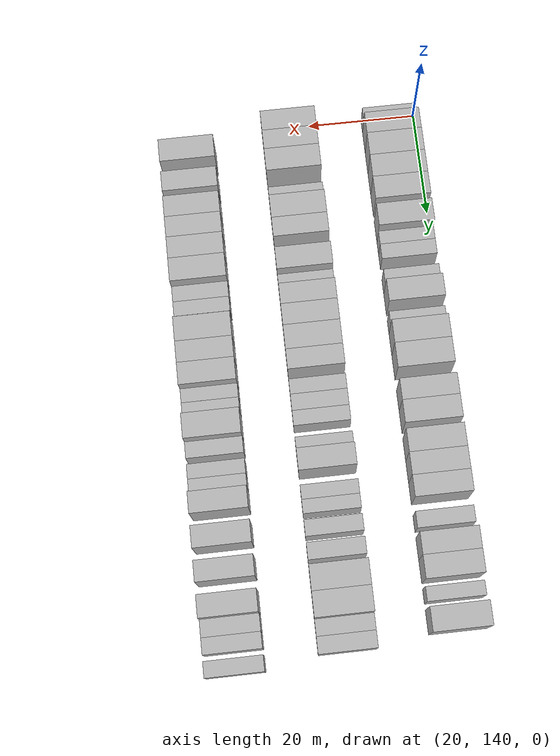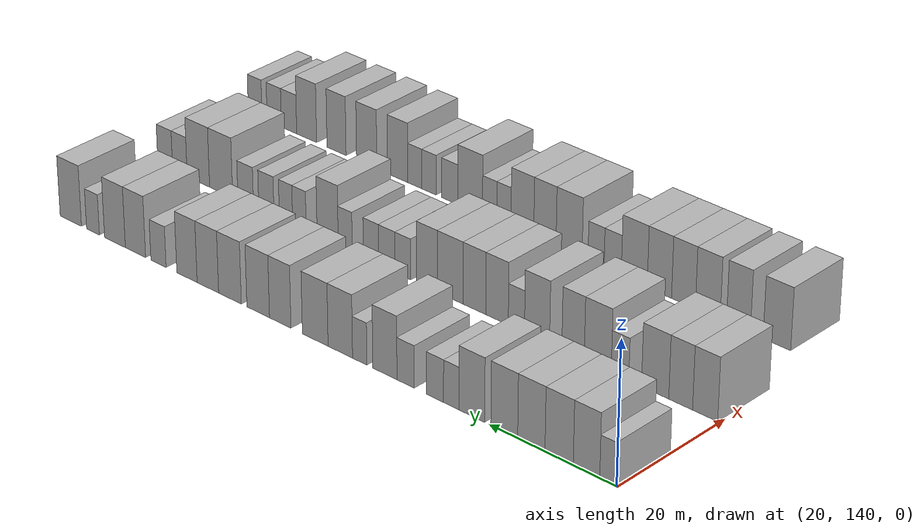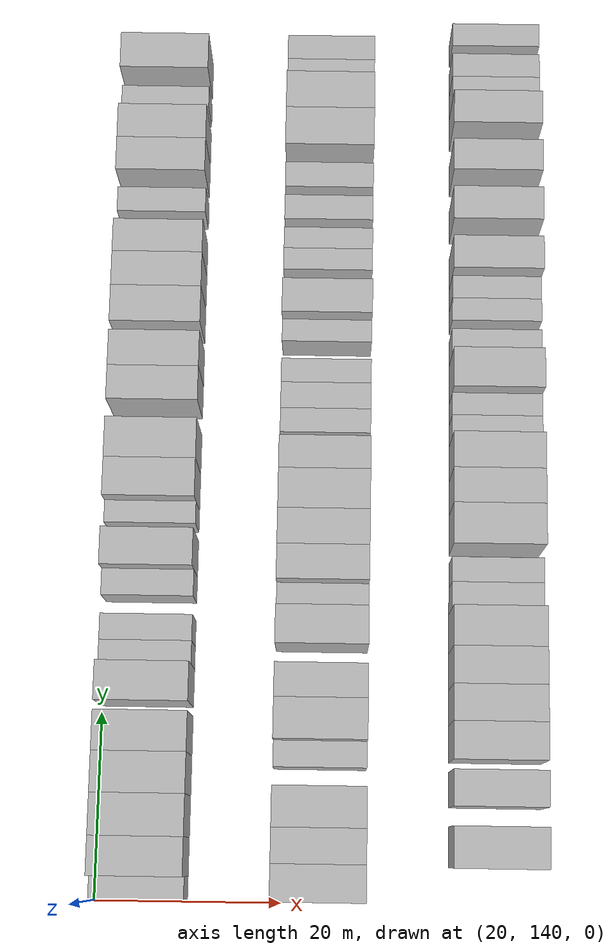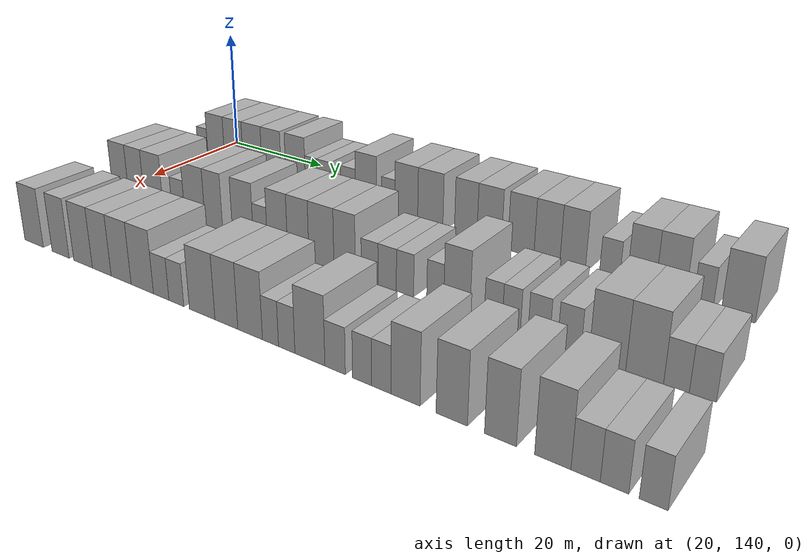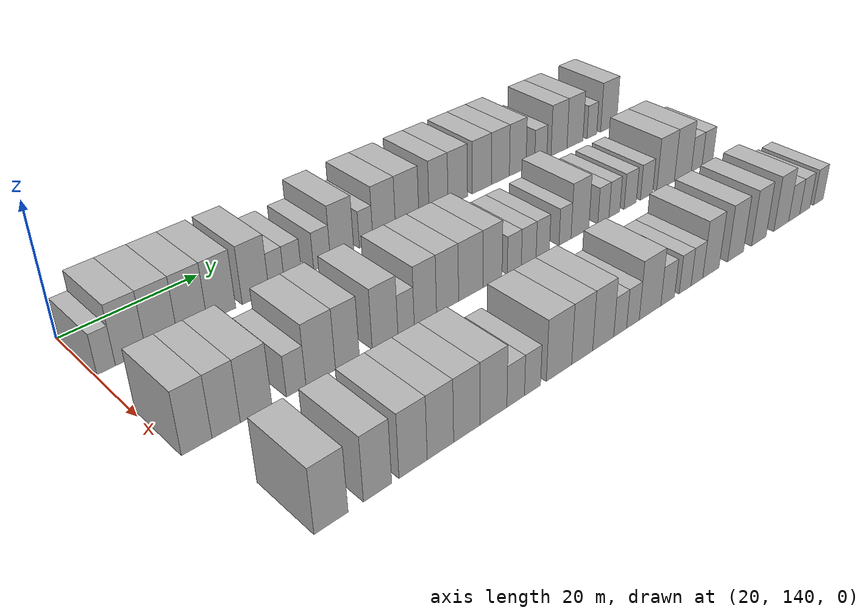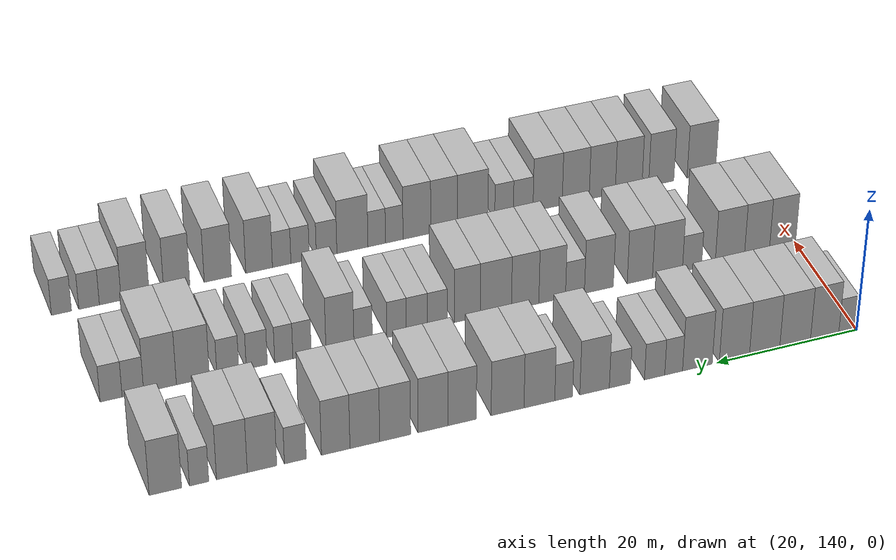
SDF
<sdf version="1.6">
 <world name="default">
  <model name="building_103">
   <static>1</static>
   <pose>25.0000 141.4532 0 0.000000 0.000000 0.000000</pose>
   <link name="link">
    <pose>0 0 3.00 0 0 0</pose>
    <collision name="collision"><geometry><box><size>10.0000 2.4300 6.0000</size></box></geometry></collision>
    <visual name="visual">
     <cast_shadows>0</cast_shadows>
     <geometry><box><size>10.0000 2.4300 6.0000</size></box></geometry>
     <material>
      <script>
       <uri>model://HANNAS_wall/materials/scripts</uri>
       <uri>model://HANNAS_wall/materials/textures</uri>
       <name>vrc/HANNAS_wall</name>
      </script>
     </material>
    </visual>
   </link>
  </model>
  <model name="building_104">
   <static>1</static>
   <pose>25.0000 144.7032 0 0.000000 0.000000 0.000000</pose>
   <link name="link">
    <pose>0 0 4.50 0 0 0</pose>
    <collision name="collision"><geometry><box><size>10.0000 4.0700 9.0000</size></box></geometry></collision>
    <visual name="visual">
     <cast_shadows>0</cast_shadows>
     <geometry><box><size>10.0000 4.0700 9.0000</size></box></geometry>
     <material>
      <script>
       <uri>model://HANNAS_wall/materials/scripts</uri>
       <uri>model://HANNAS_wall/materials/textures</uri>
       <name>vrc/HANNAS_wall</name>
      </script>
     </material>
    </visual>
   </link>
  </model>
  <model name="building_105">
   <static>1</static>
   <pose>25.0000 148.9333 0 0.000000 0.000000 0.000000</pose>
   <link name="link">
    <pose>0 0 4.50 0 0 0</pose>
    <collision name="collision"><geometry><box><size>10.0000 4.3901 9.0000</size></box></geometry></collision>
    <visual name="visual">
     <cast_shadows>0</cast_shadows>
     <geometry><box><size>10.0000 4.3901 9.0000</size></box></geometry>
     <material>
      <script>
       <uri>model://HANNAS_wall/materials/scripts</uri>
       <uri>model://HANNAS_wall/materials/textures</uri>
       <name>vrc/HANNAS_wall</name>
      </script>
     </material>
    </visual>
   </link>
  </model>
  <model name="building_106">
   <static>1</static>
   <pose>25.0000 153.2803 0 0.000000 0.000000 0.000000</pose>
   <link name="link">
    <pose>0 0 4.50 0 0 0</pose>
    <collision name="collision"><geometry><box><size>10.0000 4.3039 9.0000</size></box></geometry></collision>
    <visual name="visual">
     <cast_shadows>0</cast_shadows>
     <geometry><box><size>10.0000 4.3039 9.0000</size></box></geometry>
     <material>
      <script>
       <uri>model://HANNAS_wall/materials/scripts</uri>
       <uri>model://HANNAS_wall/materials/textures</uri>
       <name>vrc/HANNAS_wall</name>
      </script>
     </material>
    </visual>
   </link>
  </model>
  <model name="building_107">
   <static>1</static>
   <pose>25.0000 157.5645 0 0.000000 0.000000 0.000000</pose>
   <link name="link">
    <pose>0 0 4.50 0 0 0</pose>
    <collision name="collision"><geometry><box><size>10.0000 4.2645 9.0000</size></box></geometry></collision>
    <visual name="visual">
     <cast_shadows>0</cast_shadows>
     <geometry><box><size>10.0000 4.2645 9.0000</size></box></geometry>
     <material>
      <script>
       <uri>model://HANNAS_wall/materials/scripts</uri>
       <uri>model://HANNAS_wall/materials/textures</uri>
       <name>vrc/HANNAS_wall</name>
      </script>
     </material>
    </visual>
   </link>
  </model>
  <model name="building_108">
   <static>1</static>
   <pose>25.0000 162.7860 0 0.000000 0.000000 0.000000</pose>
   <link name="link">
    <pose>0 0 4.50 0 0 0</pose>
    <collision name="collision"><geometry><box><size>10.0000 4.1785 9.0000</size></box></geometry></collision>
    <visual name="visual">
     <cast_shadows>0</cast_shadows>
     <geometry><box><size>10.0000 4.1785 9.0000</size></box></geometry>
     <material>
      <script>
       <uri>model://HANNAS_wall/materials/scripts</uri>
       <uri>model://HANNAS_wall/materials/textures</uri>
       <name>vrc/HANNAS_wall</name>
      </script>
     </material>
    </visual>
   </link>
  </model>
  <model name="building_109">
   <static>1</static>
   <pose>25.0000 166.1207 0 0.000000 0.000000 0.000000</pose>
   <link name="link">
    <pose>0 0 3.00 0 0 0</pose>
    <collision name="collision"><geometry><box><size>10.0000 2.4908 6.0000</size></box></geometry></collision>
    <visual name="visual">
     <cast_shadows>0</cast_shadows>
     <geometry><box><size>10.0000 2.4908 6.0000</size></box></geometry>
     <material>
      <script>
       <uri>model://HANNAS_wall/materials/scripts</uri>
       <uri>model://HANNAS_wall/materials/textures</uri>
       <name>vrc/HANNAS_wall</name>
      </script>
     </material>
    </visual>
   </link>
  </model>
  <model name="building_110">
   <static>1</static>
   <pose>25.0000 168.7797 0 0.000000 0.000000 0.000000</pose>
   <link name="link">
    <pose>0 0 3.00 0 0 0</pose>
    <collision name="collision"><geometry><box><size>10.0000 2.8271 6.0000</size></box></geometry></collision>
    <visual name="visual">
     <cast_shadows>0</cast_shadows>
     <geometry><box><size>10.0000 2.8271 6.0000</size></box></geometry>
     <material>
      <script>
       <uri>model://HANNAS_wall/materials/scripts</uri>
       <uri>model://HANNAS_wall/materials/textures</uri>
       <name>vrc/HANNAS_wall</name>
      </script>
     </material>
    </visual>
   </link>
  </model>
  <model name="building_111">
   <static>1</static>
   <pose>25.0000 173.6369 0 0.000000 0.000000 0.000000</pose>
   <link name="link">
    <pose>0 0 3.00 0 0 0</pose>
    <collision name="collision"><geometry><box><size>10.0000 2.8874 6.0000</size></box></geometry></collision>
    <visual name="visual">
     <cast_shadows>0</cast_shadows>
     <geometry><box><size>10.0000 2.8874 6.0000</size></box></geometry>
     <material>
      <script>
       <uri>model://HANNAS_wall/materials/scripts</uri>
       <uri>model://HANNAS_wall/materials/textures</uri>
       <name>vrc/HANNAS_wall</name>
      </script>
     </material>
    </visual>
   </link>
  </model>
  <model name="building_112">
   <static>1</static>
   <pose>25.0000 177.1193 0 0.000000 0.000000 0.000000</pose>
   <link name="link">
    <pose>0 0 4.50 0 0 0</pose>
    <collision name="collision"><geometry><box><size>10.0000 4.0774 9.0000</size></box></geometry></collision>
    <visual name="visual">
     <cast_shadows>0</cast_shadows>
     <geometry><box><size>10.0000 4.0774 9.0000</size></box></geometry>
     <material>
      <script>
       <uri>model://HANNAS_wall/materials/scripts</uri>
       <uri>model://HANNAS_wall/materials/textures</uri>
       <name>vrc/HANNAS_wall</name>
      </script>
     </material>
    </visual>
   </link>
  </model>
  <model name="building_113">
   <static>1</static>
   <pose>25.0000 181.3805 0 0.000000 0.000000 0.000000</pose>
   <link name="link">
    <pose>0 0 3.00 0 0 0</pose>
    <collision name="collision"><geometry><box><size>10.0000 2.4449 6.0000</size></box></geometry></collision>
    <visual name="visual">
     <cast_shadows>0</cast_shadows>
     <geometry><box><size>10.0000 2.4449 6.0000</size></box></geometry>
     <material>
      <script>
       <uri>model://HANNAS_wall/materials/scripts</uri>
       <uri>model://HANNAS_wall/materials/textures</uri>
       <name>vrc/HANNAS_wall</name>
      </script>
     </material>
    </visual>
   </link>
  </model>
  <model name="building_114">
   <static>1</static>
   <pose>25.0000 184.7071 0 0.000000 0.000000 0.000000</pose>
   <link name="link">
    <pose>0 0 4.50 0 0 0</pose>
    <collision name="collision"><geometry><box><size>10.0000 4.2082 9.0000</size></box></geometry></collision>
    <visual name="visual">
     <cast_shadows>0</cast_shadows>
     <geometry><box><size>10.0000 4.2082 9.0000</size></box></geometry>
     <material>
      <script>
       <uri>model://HANNAS_wall/materials/scripts</uri>
       <uri>model://HANNAS_wall/materials/textures</uri>
       <name>vrc/HANNAS_wall</name>
      </script>
     </material>
    </visual>
   </link>
  </model>
  <model name="building_115">
   <static>1</static>
   <pose>25.0000 189.0493 0 0.000000 0.000000 0.000000</pose>
   <link name="link">
    <pose>0 0 4.50 0 0 0</pose>
    <collision name="collision"><geometry><box><size>10.0000 4.4761 9.0000</size></box></geometry></collision>
    <visual name="visual">
     <cast_shadows>0</cast_shadows>
     <geometry><box><size>10.0000 4.4761 9.0000</size></box></geometry>
     <material>
      <script>
       <uri>model://HANNAS_wall/materials/scripts</uri>
       <uri>model://HANNAS_wall/materials/textures</uri>
       <name>vrc/HANNAS_wall</name>
      </script>
     </material>
    </visual>
   </link>
  </model>
  <model name="building_116">
   <static>1</static>
   <pose>25.0000 195.1888 0 0.000000 0.000000 0.000000</pose>
   <link name="link">
    <pose>0 0 4.50 0 0 0</pose>
    <collision name="collision"><geometry><box><size>10.0000 3.8029 9.0000</size></box></geometry></collision>
    <visual name="visual">
     <cast_shadows>0</cast_shadows>
     <geometry><box><size>10.0000 3.8029 9.0000</size></box></geometry>
     <material>
      <script>
       <uri>model://HANNAS_wall/materials/scripts</uri>
       <uri>model://HANNAS_wall/materials/textures</uri>
       <name>vrc/HANNAS_wall</name>
      </script>
     </material>
    </visual>
   </link>
  </model>
  <model name="building_117">
   <static>1</static>
   <pose>25.0000 199.1110 0 0.000000 0.000000 0.000000</pose>
   <link name="link">
    <pose>0 0 4.50 0 0 0</pose>
    <collision name="collision"><geometry><box><size>10.0000 4.0416 9.0000</size></box></geometry></collision>
    <visual name="visual">
     <cast_shadows>0</cast_shadows>
     <geometry><box><size>10.0000 4.0416 9.0000</size></box></geometry>
     <material>
      <script>
       <uri>model://HANNAS_wall/materials/scripts</uri>
       <uri>model://HANNAS_wall/materials/textures</uri>
       <name>vrc/HANNAS_wall</name>
      </script>
     </material>
    </visual>
   </link>
  </model>
  <model name="building_118">
   <static>1</static>
   <pose>25.0000 204.1901 0 0.000000 0.000000 0.000000</pose>
   <link name="link">
    <pose>0 0 4.50 0 0 0</pose>
    <collision name="collision"><geometry><box><size>10.0000 4.1165 9.0000</size></box></geometry></collision>
    <visual name="visual">
     <cast_shadows>0</cast_shadows>
     <geometry><box><size>10.0000 4.1165 9.0000</size></box></geometry>
     <material>
      <script>
       <uri>model://HANNAS_wall/materials/scripts</uri>
       <uri>model://HANNAS_wall/materials/textures</uri>
       <name>vrc/HANNAS_wall</name>
      </script>
     </material>
    </visual>
   </link>
  </model>
  <model name="building_119">
   <static>1</static>
   <pose>25.0000 208.2195 0 0.000000 0.000000 0.000000</pose>
   <link name="link">
    <pose>0 0 4.50 0 0 0</pose>
    <collision name="collision"><geometry><box><size>10.0000 3.9421 9.0000</size></box></geometry></collision>
    <visual name="visual">
     <cast_shadows>0</cast_shadows>
     <geometry><box><size>10.0000 3.9421 9.0000</size></box></geometry>
     <material>
      <script>
       <uri>model://HANNAS_wall/materials/scripts</uri>
       <uri>model://HANNAS_wall/materials/textures</uri>
       <name>vrc/HANNAS_wall</name>
      </script>
     </material>
    </visual>
   </link>
  </model>
  <model name="building_120">
   <static>1</static>
   <pose>25.0000 212.0732 0 0.000000 0.000000 0.000000</pose>
   <link name="link">
    <pose>0 0 4.50 0 0 0</pose>
    <collision name="collision"><geometry><box><size>10.0000 3.7654 9.0000</size></box></geometry></collision>
    <visual name="visual">
     <cast_shadows>0</cast_shadows>
     <geometry><box><size>10.0000 3.7654 9.0000</size></box></geometry>
     <material>
      <script>
       <uri>model://HANNAS_wall/materials/scripts</uri>
       <uri>model://HANNAS_wall/materials/textures</uri>
       <name>vrc/HANNAS_wall</name>
      </script>
     </material>
    </visual>
   </link>
  </model>
  <model name="building_121">
   <static>1</static>
   <pose>25.0000 217.3854 0 0.000000 0.000000 0.000000</pose>
   <link name="link">
    <pose>0 0 3.00 0 0 0</pose>
    <collision name="collision"><geometry><box><size>10.0000 2.8590 6.0000</size></box></geometry></collision>
    <visual name="visual">
     <cast_shadows>0</cast_shadows>
     <geometry><box><size>10.0000 2.8590 6.0000</size></box></geometry>
     <material>
      <script>
       <uri>model://HANNAS_wall/materials/scripts</uri>
       <uri>model://HANNAS_wall/materials/textures</uri>
       <name>vrc/HANNAS_wall</name>
      </script>
     </material>
    </visual>
   </link>
  </model>
  <model name="building_122">
   <static>1</static>
   <pose>25.0000 221.7384 0 0.000000 0.000000 0.000000</pose>
   <link name="link">
    <pose>0 0 4.50 0 0 0</pose>
    <collision name="collision"><geometry><box><size>10.0000 3.8469 9.0000</size></box></geometry></collision>
    <visual name="visual">
     <cast_shadows>0</cast_shadows>
     <geometry><box><size>10.0000 3.8469 9.0000</size></box></geometry>
     <material>
      <script>
       <uri>model://HANNAS_wall/materials/scripts</uri>
       <uri>model://HANNAS_wall/materials/textures</uri>
       <name>vrc/HANNAS_wall</name>
      </script>
     </material>
    </visual>
   </link>
  </model>
  <model name="building_123">
   <static>1</static>
   <pose>25.0000 225.6553 0 0.000000 0.000000 0.000000</pose>
   <link name="link">
    <pose>0 0 4.50 0 0 0</pose>
    <collision name="collision"><geometry><box><size>10.0000 3.9869 9.0000</size></box></geometry></collision>
    <visual name="visual">
     <cast_shadows>0</cast_shadows>
     <geometry><box><size>10.0000 3.9869 9.0000</size></box></geometry>
     <material>
      <script>
       <uri>model://HANNAS_wall/materials/scripts</uri>
       <uri>model://HANNAS_wall/materials/textures</uri>
       <name>vrc/HANNAS_wall</name>
      </script>
     </material>
    </visual>
   </link>
  </model>
  <model name="building_124">
   <static>1</static>
   <pose>25.0000 229.8976 0 0.000000 0.000000 0.000000</pose>
   <link name="link">
    <pose>0 0 3.00 0 0 0</pose>
    <collision name="collision"><geometry><box><size>10.0000 2.4976 6.0000</size></box></geometry></collision>
    <visual name="visual">
     <cast_shadows>0</cast_shadows>
     <geometry><box><size>10.0000 2.4976 6.0000</size></box></geometry>
     <material>
      <script>
       <uri>model://HANNAS_wall/materials/scripts</uri>
       <uri>model://HANNAS_wall/materials/textures</uri>
       <name>vrc/HANNAS_wall</name>
      </script>
     </material>
    </visual>
   </link>
  </model>
  <model name="building_125">
   <static>1</static>
   <pose>25.0000 234.2301 0 0.000000 0.000000 0.000000</pose>
   <link name="link">
    <pose>0 0 4.50 0 0 0</pose>
    <collision name="collision"><geometry><box><size>10.0000 4.1674 9.0000</size></box></geometry></collision>
    <visual name="visual">
     <cast_shadows>0</cast_shadows>
     <geometry><box><size>10.0000 4.1674 9.0000</size></box></geometry>
     <material>
      <script>
       <uri>model://HANNAS_wall/materials/scripts</uri>
       <uri>model://HANNAS_wall/materials/textures</uri>
       <name>vrc/HANNAS_wall</name>
      </script>
     </material>
    </visual>
   </link>
  </model>
  <model name="building_213">
   <static>1</static>
   <pose>44.0000 142.2443 0 0.000000 0.000000 0.000000</pose>
   <link name="link">
    <pose>0 0 4.50 0 0 0</pose>
    <collision name="collision"><geometry><box><size>10.0000 3.8640 9.0000</size></box></geometry></collision>
    <visual name="visual">
     <cast_shadows>0</cast_shadows>
     <geometry><box><size>10.0000 3.8640 9.0000</size></box></geometry>
     <material>
      <script>
       <uri>model://HANNAS_wall/materials/scripts</uri>
       <uri>model://HANNAS_wall/materials/textures</uri>
       <name>vrc/HANNAS_wall</name>
      </script>
     </material>
    </visual>
   </link>
  </model>
  <model name="building_214">
   <static>1</static>
   <pose>44.0000 146.0235 0 0.000000 0.000000 0.000000</pose>
   <link name="link">
    <pose>0 0 4.50 0 0 0</pose>
    <collision name="collision"><geometry><box><size>10.0000 3.6944 9.0000</size></box></geometry></collision>
    <visual name="visual">
     <cast_shadows>0</cast_shadows>
     <geometry><box><size>10.0000 3.6944 9.0000</size></box></geometry>
     <material>
      <script>
       <uri>model://HANNAS_wall/materials/scripts</uri>
       <uri>model://HANNAS_wall/materials/textures</uri>
       <name>vrc/HANNAS_wall</name>
      </script>
     </material>
    </visual>
   </link>
  </model>
  <model name="building_215">
   <static>1</static>
   <pose>44.0000 150.0126 0 0.000000 0.000000 0.000000</pose>
   <link name="link">
    <pose>0 0 4.50 0 0 0</pose>
    <collision name="collision"><geometry><box><size>10.0000 4.2839 9.0000</size></box></geometry></collision>
    <visual name="visual">
     <cast_shadows>0</cast_shadows>
     <geometry><box><size>10.0000 4.2839 9.0000</size></box></geometry>
     <material>
      <script>
       <uri>model://HANNAS_wall/materials/scripts</uri>
       <uri>model://HANNAS_wall/materials/textures</uri>
       <name>vrc/HANNAS_wall</name>
      </script>
     </material>
    </visual>
   </link>
  </model>
  <model name="building_216">
   <static>1</static>
   <pose>44.0000 155.5559 0 0.000000 0.000000 0.000000</pose>
   <link name="link">
    <pose>0 0 3.00 0 0 0</pose>
    <collision name="collision"><geometry><box><size>10.0000 2.8028 6.0000</size></box></geometry></collision>
    <visual name="visual">
     <cast_shadows>0</cast_shadows>
     <geometry><box><size>10.0000 2.8028 6.0000</size></box></geometry>
     <material>
      <script>
       <uri>model://HANNAS_wall/materials/scripts</uri>
       <uri>model://HANNAS_wall/materials/textures</uri>
       <name>vrc/HANNAS_wall</name>
      </script>
     </material>
    </visual>
   </link>
  </model>
  <model name="building_217">
   <static>1</static>
   <pose>44.0000 159.1322 0 0.000000 0.000000 0.000000</pose>
   <link name="link">
    <pose>0 0 4.50 0 0 0</pose>
    <collision name="collision"><geometry><box><size>10.0000 4.3497 9.0000</size></box></geometry></collision>
    <visual name="visual">
     <cast_shadows>0</cast_shadows>
     <geometry><box><size>10.0000 4.3497 9.0000</size></box></geometry>
     <material>
      <script>
       <uri>model://HANNAS_wall/materials/scripts</uri>
       <uri>model://HANNAS_wall/materials/textures</uri>
       <name>vrc/HANNAS_wall</name>
      </script>
     </material>
    </visual>
   </link>
  </model>
  <model name="building_218">
   <static>1</static>
   <pose>44.0000 163.1326 0 0.000000 0.000000 0.000000</pose>
   <link name="link">
    <pose>0 0 4.50 0 0 0</pose>
    <collision name="collision"><geometry><box><size>10.0000 3.6511 9.0000</size></box></geometry></collision>
    <visual name="visual">
     <cast_shadows>0</cast_shadows>
     <geometry><box><size>10.0000 3.6511 9.0000</size></box></geometry>
     <material>
      <script>
       <uri>model://HANNAS_wall/materials/scripts</uri>
       <uri>model://HANNAS_wall/materials/textures</uri>
       <name>vrc/HANNAS_wall</name>
      </script>
     </material>
    </visual>
   </link>
  </model>
  <model name="building_219">
   <static>1</static>
   <pose>44.0000 169.0336 0 0.000000 0.000000 0.000000</pose>
   <link name="link">
    <pose>0 0 4.50 0 0 0</pose>
    <collision name="collision"><geometry><box><size>10.0000 4.1509 9.0000</size></box></geometry></collision>
    <visual name="visual">
     <cast_shadows>0</cast_shadows>
     <geometry><box><size>10.0000 4.1509 9.0000</size></box></geometry>
     <material>
      <script>
       <uri>model://HANNAS_wall/materials/scripts</uri>
       <uri>model://HANNAS_wall/materials/textures</uri>
       <name>vrc/HANNAS_wall</name>
      </script>
     </material>
    </visual>
   </link>
  </model>
  <model name="building_220">
   <static>1</static>
   <pose>44.0000 172.4661 0 0.000000 0.000000 0.000000</pose>
   <link name="link">
    <pose>0 0 3.00 0 0 0</pose>
    <collision name="collision"><geometry><box><size>10.0000 2.7141 6.0000</size></box></geometry></collision>
    <visual name="visual">
     <cast_shadows>0</cast_shadows>
     <geometry><box><size>10.0000 2.7141 6.0000</size></box></geometry>
     <material>
      <script>
       <uri>model://HANNAS_wall/materials/scripts</uri>
       <uri>model://HANNAS_wall/materials/textures</uri>
       <name>vrc/HANNAS_wall</name>
      </script>
     </material>
    </visual>
   </link>
  </model>
  <model name="building_221">
   <static>1</static>
   <pose>44.0000 175.7216 0 0.000000 0.000000 0.000000</pose>
   <link name="link">
    <pose>0 0 4.50 0 0 0</pose>
    <collision name="collision"><geometry><box><size>10.0000 3.7969 9.0000</size></box></geometry></collision>
    <visual name="visual">
     <cast_shadows>0</cast_shadows>
     <geometry><box><size>10.0000 3.7969 9.0000</size></box></geometry>
     <material>
      <script>
       <uri>model://HANNAS_wall/materials/scripts</uri>
       <uri>model://HANNAS_wall/materials/textures</uri>
       <name>vrc/HANNAS_wall</name>
      </script>
     </material>
    </visual>
   </link>
  </model>
  <model name="building_222">
   <static>1</static>
   <pose>44.0000 179.5646 0 0.000000 0.000000 0.000000</pose>
   <link name="link">
    <pose>0 0 4.50 0 0 0</pose>
    <collision name="collision"><geometry><box><size>10.0000 3.8889 9.0000</size></box></geometry></collision>
    <visual name="visual">
     <cast_shadows>0</cast_shadows>
     <geometry><box><size>10.0000 3.8889 9.0000</size></box></geometry>
     <material>
      <script>
       <uri>model://HANNAS_wall/materials/scripts</uri>
       <uri>model://HANNAS_wall/materials/textures</uri>
       <name>vrc/HANNAS_wall</name>
      </script>
     </material>
    </visual>
   </link>
  </model>
  <model name="building_223">
   <static>1</static>
   <pose>44.0000 183.7106 0 0.000000 0.000000 0.000000</pose>
   <link name="link">
    <pose>0 0 4.50 0 0 0</pose>
    <collision name="collision"><geometry><box><size>10.0000 4.4032 9.0000</size></box></geometry></collision>
    <visual name="visual">
     <cast_shadows>0</cast_shadows>
     <geometry><box><size>10.0000 4.4032 9.0000</size></box></geometry>
     <material>
      <script>
       <uri>model://HANNAS_wall/materials/scripts</uri>
       <uri>model://HANNAS_wall/materials/textures</uri>
       <name>vrc/HANNAS_wall</name>
      </script>
     </material>
    </visual>
   </link>
  </model>
  <model name="building_224">
   <static>1</static>
   <pose>44.0000 187.7332 0 0.000000 0.000000 0.000000</pose>
   <link name="link">
    <pose>0 0 4.50 0 0 0</pose>
    <collision name="collision"><geometry><box><size>10.0000 3.6420 9.0000</size></box></geometry></collision>
    <visual name="visual">
     <cast_shadows>0</cast_shadows>
     <geometry><box><size>10.0000 3.6420 9.0000</size></box></geometry>
     <material>
      <script>
       <uri>model://HANNAS_wall/materials/scripts</uri>
       <uri>model://HANNAS_wall/materials/textures</uri>
       <name>vrc/HANNAS_wall</name>
      </script>
     </material>
    </visual>
   </link>
  </model>
  <model name="building_225">
   <static>1</static>
   <pose>44.0000 191.9209 0 0.000000 0.000000 0.000000</pose>
   <link name="link">
    <pose>0 0 3.00 0 0 0</pose>
    <collision name="collision"><geometry><box><size>10.0000 2.7335 6.0000</size></box></geometry></collision>
    <visual name="visual">
     <cast_shadows>0</cast_shadows>
     <geometry><box><size>10.0000 2.7335 6.0000</size></box></geometry>
     <material>
      <script>
       <uri>model://HANNAS_wall/materials/scripts</uri>
       <uri>model://HANNAS_wall/materials/textures</uri>
       <name>vrc/HANNAS_wall</name>
      </script>
     </material>
    </visual>
   </link>
  </model>
  <model name="building_226">
   <static>1</static>
   <pose>44.0000 194.7605 0 0.000000 0.000000 0.000000</pose>
   <link name="link">
    <pose>0 0 3.00 0 0 0</pose>
    <collision name="collision"><geometry><box><size>10.0000 2.9456 6.0000</size></box></geometry></collision>
    <visual name="visual">
     <cast_shadows>0</cast_shadows>
     <geometry><box><size>10.0000 2.9456 6.0000</size></box></geometry>
     <material>
      <script>
       <uri>model://HANNAS_wall/materials/scripts</uri>
       <uri>model://HANNAS_wall/materials/textures</uri>
       <name>vrc/HANNAS_wall</name>
      </script>
     </material>
    </visual>
   </link>
  </model>
  <model name="building_227">
   <static>1</static>
   <pose>44.0000 197.5873 0 0.000000 0.000000 0.000000</pose>
   <link name="link">
    <pose>0 0 3.00 0 0 0</pose>
    <collision name="collision"><geometry><box><size>10.0000 2.7081 6.0000</size></box></geometry></collision>
    <visual name="visual">
     <cast_shadows>0</cast_shadows>
     <geometry><box><size>10.0000 2.7081 6.0000</size></box></geometry>
     <material>
      <script>
       <uri>model://HANNAS_wall/materials/scripts</uri>
       <uri>model://HANNAS_wall/materials/textures</uri>
       <name>vrc/HANNAS_wall</name>
      </script>
     </material>
    </visual>
   </link>
  </model>
  <model name="building_228">
   <static>1</static>
   <pose>44.0000 202.2109 0 0.000000 0.000000 0.000000</pose>
   <link name="link">
    <pose>0 0 3.00 0 0 0</pose>
    <collision name="collision"><geometry><box><size>10.0000 2.5391 6.0000</size></box></geometry></collision>
    <visual name="visual">
     <cast_shadows>0</cast_shadows>
     <geometry><box><size>10.0000 2.5391 6.0000</size></box></geometry>
     <material>
      <script>
       <uri>model://HANNAS_wall/materials/scripts</uri>
       <uri>model://HANNAS_wall/materials/textures</uri>
       <name>vrc/HANNAS_wall</name>
      </script>
     </material>
    </visual>
   </link>
  </model>
  <model name="building_229">
   <static>1</static>
   <pose>44.0000 205.4055 0 0.000000 0.000000 0.000000</pose>
   <link name="link">
    <pose>0 0 4.50 0 0 0</pose>
    <collision name="collision"><geometry><box><size>10.0000 3.8501 9.0000</size></box></geometry></collision>
    <visual name="visual">
     <cast_shadows>0</cast_shadows>
     <geometry><box><size>10.0000 3.8501 9.0000</size></box></geometry>
     <material>
      <script>
       <uri>model://HANNAS_wall/materials/scripts</uri>
       <uri>model://HANNAS_wall/materials/textures</uri>
       <name>vrc/HANNAS_wall</name>
      </script>
     </material>
    </visual>
   </link>
  </model>
  <model name="building_230">
   <static>1</static>
   <pose>44.0000 210.5846 0 0.000000 0.000000 0.000000</pose>
   <link name="link">
    <pose>0 0 3.00 0 0 0</pose>
    <collision name="collision"><geometry><box><size>10.0000 2.5080 6.0000</size></box></geometry></collision>
    <visual name="visual">
     <cast_shadows>0</cast_shadows>
     <geometry><box><size>10.0000 2.5080 6.0000</size></box></geometry>
     <material>
      <script>
       <uri>model://HANNAS_wall/materials/scripts</uri>
       <uri>model://HANNAS_wall/materials/textures</uri>
       <name>vrc/HANNAS_wall</name>
      </script>
     </material>
    </visual>
   </link>
  </model>
  <model name="building_231">
   <static>1</static>
   <pose>44.0000 213.0751 0 0.000000 0.000000 0.000000</pose>
   <link name="link">
    <pose>0 0 3.00 0 0 0</pose>
    <collision name="collision"><geometry><box><size>10.0000 2.4731 6.0000</size></box></geometry></collision>
    <visual name="visual">
     <cast_shadows>0</cast_shadows>
     <geometry><box><size>10.0000 2.4731 6.0000</size></box></geometry>
     <material>
      <script>
       <uri>model://HANNAS_wall/materials/scripts</uri>
       <uri>model://HANNAS_wall/materials/textures</uri>
       <name>vrc/HANNAS_wall</name>
      </script>
     </material>
    </visual>
   </link>
  </model>
  <model name="building_232">
   <static>1</static>
   <pose>44.0000 216.7403 0 0.000000 0.000000 0.000000</pose>
   <link name="link">
    <pose>0 0 3.00 0 0 0</pose>
    <collision name="collision"><geometry><box><size>10.0000 2.8571 6.0000</size></box></geometry></collision>
    <visual name="visual">
     <cast_shadows>0</cast_shadows>
     <geometry><box><size>10.0000 2.8571 6.0000</size></box></geometry>
     <material>
      <script>
       <uri>model://HANNAS_wall/materials/scripts</uri>
       <uri>model://HANNAS_wall/materials/textures</uri>
       <name>vrc/HANNAS_wall</name>
      </script>
     </material>
    </visual>
   </link>
  </model>
  <model name="building_233">
   <static>1</static>
   <pose>44.0000 220.6469 0 0.000000 0.000000 0.000000</pose>
   <link name="link">
    <pose>0 0 3.00 0 0 0</pose>
    <collision name="collision"><geometry><box><size>10.0000 2.9561 6.0000</size></box></geometry></collision>
    <visual name="visual">
     <cast_shadows>0</cast_shadows>
     <geometry><box><size>10.0000 2.9561 6.0000</size></box></geometry>
     <material>
      <script>
       <uri>model://HANNAS_wall/materials/scripts</uri>
       <uri>model://HANNAS_wall/materials/textures</uri>
       <name>vrc/HANNAS_wall</name>
      </script>
     </material>
    </visual>
   </link>
  </model>
  <model name="building_234">
   <static>1</static>
   <pose>44.0000 225.3406 0 0.000000 0.000000 0.000000</pose>
   <link name="link">
    <pose>0 0 4.50 0 0 0</pose>
    <collision name="collision"><geometry><box><size>10.0000 4.4312 9.0000</size></box></geometry></collision>
    <visual name="visual">
     <cast_shadows>0</cast_shadows>
     <geometry><box><size>10.0000 4.4312 9.0000</size></box></geometry>
     <material>
      <script>
       <uri>model://HANNAS_wall/materials/scripts</uri>
       <uri>model://HANNAS_wall/materials/textures</uri>
       <name>vrc/HANNAS_wall</name>
      </script>
     </material>
    </visual>
   </link>
  </model>
  <model name="building_235">
   <static>1</static>
   <pose>44.0000 229.7358 0 0.000000 0.000000 0.000000</pose>
   <link name="link">
    <pose>0 0 4.50 0 0 0</pose>
    <collision name="collision"><geometry><box><size>10.0000 4.3592 9.0000</size></box></geometry></collision>
    <visual name="visual">
     <cast_shadows>0</cast_shadows>
     <geometry><box><size>10.0000 4.3592 9.0000</size></box></geometry>
     <material>
      <script>
       <uri>model://HANNAS_wall/materials/scripts</uri>
       <uri>model://HANNAS_wall/materials/textures</uri>
       <name>vrc/HANNAS_wall</name>
      </script>
     </material>
    </visual>
   </link>
  </model>
  <model name="building_236">
   <static>1</static>
   <pose>44.0000 233.3399 0 0.000000 0.000000 0.000000</pose>
   <link name="link">
    <pose>0 0 3.00 0 0 0</pose>
    <collision name="collision"><geometry><box><size>10.0000 2.8491 6.0000</size></box></geometry></collision>
    <visual name="visual">
     <cast_shadows>0</cast_shadows>
     <geometry><box><size>10.0000 2.8491 6.0000</size></box></geometry>
     <material>
      <script>
       <uri>model://HANNAS_wall/materials/scripts</uri>
       <uri>model://HANNAS_wall/materials/textures</uri>
       <name>vrc/HANNAS_wall</name>
      </script>
     </material>
    </visual>
   </link>
  </model>
  <model name="building_237">
   <static>1</static>
   <pose>44.0000 236.2223 0 0.000000 0.000000 0.000000</pose>
   <link name="link">
    <pose>0 0 3.00 0 0 0</pose>
    <collision name="collision"><geometry><box><size>10.0000 2.9155 6.0000</size></box></geometry></collision>
    <visual name="visual">
     <cast_shadows>0</cast_shadows>
     <geometry><box><size>10.0000 2.9155 6.0000</size></box></geometry>
     <material>
      <script>
       <uri>model://HANNAS_wall/materials/scripts</uri>
       <uri>model://HANNAS_wall/materials/textures</uri>
       <name>vrc/HANNAS_wall</name>
      </script>
     </material>
    </visual>
   </link>
  </model>
  <model name="building_336">
   <static>1</static>
   <pose>63.0000 146.1378 0 0.000000 0.000000 0.000000</pose>
   <link name="link">
    <pose>0 0 4.50 0 0 0</pose>
    <collision name="collision"><geometry><box><size>10.0000 4.3176 9.0000</size></box></geometry></collision>
    <visual name="visual">
     <cast_shadows>0</cast_shadows>
     <geometry><box><size>10.0000 4.3176 9.0000</size></box></geometry>
     <material>
      <script>
       <uri>model://HANNAS_wall/materials/scripts</uri>
       <uri>model://HANNAS_wall/materials/textures</uri>
       <name>vrc/HANNAS_wall</name>
      </script>
     </material>
    </visual>
   </link>
  </model>
  <model name="building_337">
   <static>1</static>
   <pose>63.0000 152.2011 0 0.000000 0.000000 0.000000</pose>
   <link name="link">
    <pose>0 0 4.50 0 0 0</pose>
    <collision name="collision"><geometry><box><size>10.0000 3.8091 9.0000</size></box></geometry></collision>
    <visual name="visual">
     <cast_shadows>0</cast_shadows>
     <geometry><box><size>10.0000 3.8091 9.0000</size></box></geometry>
     <material>
      <script>
       <uri>model://HANNAS_wall/materials/scripts</uri>
       <uri>model://HANNAS_wall/materials/textures</uri>
       <name>vrc/HANNAS_wall</name>
      </script>
     </material>
    </visual>
   </link>
  </model>
  <model name="building_338">
   <static>1</static>
   <pose>63.0000 157.1078 0 0.000000 0.000000 0.000000</pose>
   <link name="link">
    <pose>0 0 4.50 0 0 0</pose>
    <collision name="collision"><geometry><box><size>10.0000 4.0045 9.0000</size></box></geometry></collision>
    <visual name="visual">
     <cast_shadows>0</cast_shadows>
     <geometry><box><size>10.0000 4.0045 9.0000</size></box></geometry>
     <material>
      <script>
       <uri>model://HANNAS_wall/materials/scripts</uri>
       <uri>model://HANNAS_wall/materials/textures</uri>
       <name>vrc/HANNAS_wall</name>
      </script>
     </material>
    </visual>
   </link>
  </model>
  <model name="building_339">
   <static>1</static>
   <pose>63.0000 161.0529 0 0.000000 0.000000 0.000000</pose>
   <link name="link">
    <pose>0 0 4.50 0 0 0</pose>
    <collision name="collision"><geometry><box><size>10.0000 3.8857 9.0000</size></box></geometry></collision>
    <visual name="visual">
     <cast_shadows>0</cast_shadows>
     <geometry><box><size>10.0000 3.8857 9.0000</size></box></geometry>
     <material>
      <script>
       <uri>model://HANNAS_wall/materials/scripts</uri>
       <uri>model://HANNAS_wall/materials/textures</uri>
       <name>vrc/HANNAS_wall</name>
      </script>
     </material>
    </visual>
   </link>
  </model>
  <model name="building_340">
   <static>1</static>
   <pose>63.0000 164.9989 0 0.000000 0.000000 0.000000</pose>
   <link name="link">
    <pose>0 0 4.50 0 0 0</pose>
    <collision name="collision"><geometry><box><size>10.0000 4.0062 9.0000</size></box></geometry></collision>
    <visual name="visual">
     <cast_shadows>0</cast_shadows>
     <geometry><box><size>10.0000 4.0062 9.0000</size></box></geometry>
     <material>
      <script>
       <uri>model://HANNAS_wall/materials/scripts</uri>
       <uri>model://HANNAS_wall/materials/textures</uri>
       <name>vrc/HANNAS_wall</name>
      </script>
     </material>
    </visual>
   </link>
  </model>
  <model name="building_341">
   <static>1</static>
   <pose>63.0000 169.1610 0 0.000000 0.000000 0.000000</pose>
   <link name="link">
    <pose>0 0 4.50 0 0 0</pose>
    <collision name="collision"><geometry><box><size>10.0000 4.3179 9.0000</size></box></geometry></collision>
    <visual name="visual">
     <cast_shadows>0</cast_shadows>
     <geometry><box><size>10.0000 4.3179 9.0000</size></box></geometry>
     <material>
      <script>
       <uri>model://HANNAS_wall/materials/scripts</uri>
       <uri>model://HANNAS_wall/materials/textures</uri>
       <name>vrc/HANNAS_wall</name>
      </script>
     </material>
    </visual>
   </link>
  </model>
  <model name="building_342">
   <static>1</static>
   <pose>63.0000 172.7662 0 0.000000 0.000000 0.000000</pose>
   <link name="link">
    <pose>0 0 3.00 0 0 0</pose>
    <collision name="collision"><geometry><box><size>10.0000 2.8925 6.0000</size></box></geometry></collision>
    <visual name="visual">
     <cast_shadows>0</cast_shadows>
     <geometry><box><size>10.0000 2.8925 6.0000</size></box></geometry>
     <material>
      <script>
       <uri>model://HANNAS_wall/materials/scripts</uri>
       <uri>model://HANNAS_wall/materials/textures</uri>
       <name>vrc/HANNAS_wall</name>
      </script>
     </material>
    </visual>
   </link>
  </model>
  <model name="building_343">
   <static>1</static>
   <pose>63.0000 175.5756 0 0.000000 0.000000 0.000000</pose>
   <link name="link">
    <pose>0 0 3.00 0 0 0</pose>
    <collision name="collision"><geometry><box><size>10.0000 2.7263 6.0000</size></box></geometry></collision>
    <visual name="visual">
     <cast_shadows>0</cast_shadows>
     <geometry><box><size>10.0000 2.7263 6.0000</size></box></geometry>
     <material>
      <script>
       <uri>model://HANNAS_wall/materials/scripts</uri>
       <uri>model://HANNAS_wall/materials/textures</uri>
       <name>vrc/HANNAS_wall</name>
      </script>
     </material>
    </visual>
   </link>
  </model>
  <model name="building_344">
   <static>1</static>
   <pose>63.0000 180.1739 0 0.000000 0.000000 0.000000</pose>
   <link name="link">
    <pose>0 0 4.50 0 0 0</pose>
    <collision name="collision"><geometry><box><size>10.0000 4.4703 9.0000</size></box></geometry></collision>
    <visual name="visual">
     <cast_shadows>0</cast_shadows>
     <geometry><box><size>10.0000 4.4703 9.0000</size></box></geometry>
     <material>
      <script>
       <uri>model://HANNAS_wall/materials/scripts</uri>
       <uri>model://HANNAS_wall/materials/textures</uri>
       <name>vrc/HANNAS_wall</name>
      </script>
     </material>
    </visual>
   </link>
  </model>
  <model name="building_345">
   <static>1</static>
   <pose>63.0000 184.3366 0 0.000000 0.000000 0.000000</pose>
   <link name="link">
    <pose>0 0 4.50 0 0 0</pose>
    <collision name="collision"><geometry><box><size>10.0000 3.8552 9.0000</size></box></geometry></collision>
    <visual name="visual">
     <cast_shadows>0</cast_shadows>
     <geometry><box><size>10.0000 3.8552 9.0000</size></box></geometry>
     <material>
      <script>
       <uri>model://HANNAS_wall/materials/scripts</uri>
       <uri>model://HANNAS_wall/materials/textures</uri>
       <name>vrc/HANNAS_wall</name>
      </script>
     </material>
    </visual>
   </link>
  </model>
  <model name="building_346">
   <static>1</static>
   <pose>63.0000 188.2632 0 0.000000 0.000000 0.000000</pose>
   <link name="link">
    <pose>0 0 4.50 0 0 0</pose>
    <collision name="collision"><geometry><box><size>10.0000 3.9980 9.0000</size></box></geometry></collision>
    <visual name="visual">
     <cast_shadows>0</cast_shadows>
     <geometry><box><size>10.0000 3.9980 9.0000</size></box></geometry>
     <material>
      <script>
       <uri>model://HANNAS_wall/materials/scripts</uri>
       <uri>model://HANNAS_wall/materials/textures</uri>
       <name>vrc/HANNAS_wall</name>
      </script>
     </material>
    </visual>
   </link>
  </model>
  <model name="building_347">
   <static>1</static>
   <pose>63.0000 191.5210 0 0.000000 0.000000 0.000000</pose>
   <link name="link">
    <pose>0 0 3.00 0 0 0</pose>
    <collision name="collision"><geometry><box><size>10.0000 2.5178 6.0000</size></box></geometry></collision>
    <visual name="visual">
     <cast_shadows>0</cast_shadows>
     <geometry><box><size>10.0000 2.5178 6.0000</size></box></geometry>
     <material>
      <script>
       <uri>model://HANNAS_wall/materials/scripts</uri>
       <uri>model://HANNAS_wall/materials/textures</uri>
       <name>vrc/HANNAS_wall</name>
      </script>
     </material>
    </visual>
   </link>
  </model>
  <model name="building_348">
   <static>1</static>
   <pose>63.0000 194.0384 0 0.000000 0.000000 0.000000</pose>
   <link name="link">
    <pose>0 0 3.00 0 0 0</pose>
    <collision name="collision"><geometry><box><size>10.0000 2.5169 6.0000</size></box></geometry></collision>
    <visual name="visual">
     <cast_shadows>0</cast_shadows>
     <geometry><box><size>10.0000 2.5169 6.0000</size></box></geometry>
     <material>
      <script>
       <uri>model://HANNAS_wall/materials/scripts</uri>
       <uri>model://HANNAS_wall/materials/textures</uri>
       <name>vrc/HANNAS_wall</name>
      </script>
     </material>
    </visual>
   </link>
  </model>
  <model name="building_349">
   <static>1</static>
   <pose>63.0000 197.5154 0 0.000000 0.000000 0.000000</pose>
   <link name="link">
    <pose>0 0 4.50 0 0 0</pose>
    <collision name="collision"><geometry><box><size>10.0000 4.4370 9.0000</size></box></geometry></collision>
    <visual name="visual">
     <cast_shadows>0</cast_shadows>
     <geometry><box><size>10.0000 4.4370 9.0000</size></box></geometry>
     <material>
      <script>
       <uri>model://HANNAS_wall/materials/scripts</uri>
       <uri>model://HANNAS_wall/materials/textures</uri>
       <name>vrc/HANNAS_wall</name>
      </script>
     </material>
    </visual>
   </link>
  </model>
  <model name="building_350">
   <static>1</static>
   <pose>63.0000 201.1935 0 0.000000 0.000000 0.000000</pose>
   <link name="link">
    <pose>0 0 3.00 0 0 0</pose>
    <collision name="collision"><geometry><box><size>10.0000 2.9193 6.0000</size></box></geometry></collision>
    <visual name="visual">
     <cast_shadows>0</cast_shadows>
     <geometry><box><size>10.0000 2.9193 6.0000</size></box></geometry>
     <material>
      <script>
       <uri>model://HANNAS_wall/materials/scripts</uri>
       <uri>model://HANNAS_wall/materials/textures</uri>
       <name>vrc/HANNAS_wall</name>
      </script>
     </material>
    </visual>
   </link>
  </model>
  <model name="building_351">
   <static>1</static>
   <pose>63.0000 204.9526 0 0.000000 0.000000 0.000000</pose>
   <link name="link">
    <pose>0 0 3.00 0 0 0</pose>
    <collision name="collision"><geometry><box><size>10.0000 2.5990 6.0000</size></box></geometry></collision>
    <visual name="visual">
     <cast_shadows>0</cast_shadows>
     <geometry><box><size>10.0000 2.5990 6.0000</size></box></geometry>
     <material>
      <script>
       <uri>model://HANNAS_wall/materials/scripts</uri>
       <uri>model://HANNAS_wall/materials/textures</uri>
       <name>vrc/HANNAS_wall</name>
      </script>
     </material>
    </visual>
   </link>
  </model>
  <model name="building_352">
   <static>1</static>
   <pose>63.0000 207.5584 0 0.000000 0.000000 0.000000</pose>
   <link name="link">
    <pose>0 0 3.00 0 0 0</pose>
    <collision name="collision"><geometry><box><size>10.0000 2.6126 6.0000</size></box></geometry></collision>
    <visual name="visual">
     <cast_shadows>0</cast_shadows>
     <geometry><box><size>10.0000 2.6126 6.0000</size></box></geometry>
     <material>
      <script>
       <uri>model://HANNAS_wall/materials/scripts</uri>
       <uri>model://HANNAS_wall/materials/textures</uri>
       <name>vrc/HANNAS_wall</name>
      </script>
     </material>
    </visual>
   </link>
  </model>
  <model name="building_353">
   <static>1</static>
   <pose>63.0000 210.7383 0 0.000000 0.000000 0.000000</pose>
   <link name="link">
    <pose>0 0 4.50 0 0 0</pose>
    <collision name="collision"><geometry><box><size>10.0000 3.7472 9.0000</size></box></geometry></collision>
    <visual name="visual">
     <cast_shadows>0</cast_shadows>
     <geometry><box><size>10.0000 3.7472 9.0000</size></box></geometry>
     <material>
      <script>
       <uri>model://HANNAS_wall/materials/scripts</uri>
       <uri>model://HANNAS_wall/materials/textures</uri>
       <name>vrc/HANNAS_wall</name>
      </script>
     </material>
    </visual>
   </link>
  </model>
  <model name="building_354">
   <static>1</static>
   <pose>63.0000 216.5149 0 0.000000 0.000000 0.000000</pose>
   <link name="link">
    <pose>0 0 4.50 0 0 0</pose>
    <collision name="collision"><geometry><box><size>10.0000 3.8061 9.0000</size></box></geometry></collision>
    <visual name="visual">
     <cast_shadows>0</cast_shadows>
     <geometry><box><size>10.0000 3.8061 9.0000</size></box></geometry>
     <material>
      <script>
       <uri>model://HANNAS_wall/materials/scripts</uri>
       <uri>model://HANNAS_wall/materials/textures</uri>
       <name>vrc/HANNAS_wall</name>
      </script>
     </material>
    </visual>
   </link>
  </model>
  <model name="building_355">
   <static>1</static>
   <pose>63.0000 222.2318 0 0.000000 0.000000 0.000000</pose>
   <link name="link">
    <pose>0 0 4.50 0 0 0</pose>
    <collision name="collision"><geometry><box><size>10.0000 3.6278 9.0000</size></box></geometry></collision>
    <visual name="visual">
     <cast_shadows>0</cast_shadows>
     <geometry><box><size>10.0000 3.6278 9.0000</size></box></geometry>
     <material>
      <script>
       <uri>model://HANNAS_wall/materials/scripts</uri>
       <uri>model://HANNAS_wall/materials/textures</uri>
       <name>vrc/HANNAS_wall</name>
      </script>
     </material>
    </visual>
   </link>
  </model>
  <model name="building_356">
   <static>1</static>
   <pose>63.0000 227.9776 0 0.000000 0.000000 0.000000</pose>
   <link name="link">
    <pose>0 0 4.50 0 0 0</pose>
    <collision name="collision"><geometry><box><size>10.0000 3.8638 9.0000</size></box></geometry></collision>
    <visual name="visual">
     <cast_shadows>0</cast_shadows>
     <geometry><box><size>10.0000 3.8638 9.0000</size></box></geometry>
     <material>
      <script>
       <uri>model://HANNAS_wall/materials/scripts</uri>
       <uri>model://HANNAS_wall/materials/textures</uri>
       <name>vrc/HANNAS_wall</name>
      </script>
     </material>
    </visual>
   </link>
  </model>
  <model name="building_357">
   <static>1</static>
   <pose>63.0000 231.4010 0 0.000000 0.000000 0.000000</pose>
   <link name="link">
    <pose>0 0 3.00 0 0 0</pose>
    <collision name="collision"><geometry><box><size>10.0000 2.9830 6.0000</size></box></geometry></collision>
    <visual name="visual">
     <cast_shadows>0</cast_shadows>
     <geometry><box><size>10.0000 2.9830 6.0000</size></box></geometry>
     <material>
      <script>
       <uri>model://HANNAS_wall/materials/scripts</uri>
       <uri>model://HANNAS_wall/materials/textures</uri>
       <name>vrc/HANNAS_wall</name>
      </script>
     </material>
    </visual>
   </link>
  </model>
  <model name="building_358">
   <static>1</static>
   <pose>63.0000 234.2970 0 0.000000 0.000000 0.000000</pose>
   <link name="link">
    <pose>0 0 3.00 0 0 0</pose>
    <collision name="collision"><geometry><box><size>10.0000 2.8088 6.0000</size></box></geometry></collision>
    <visual name="visual">
     <cast_shadows>0</cast_shadows>
     <geometry><box><size>10.0000 2.8088 6.0000</size></box></geometry>
     <material>
      <script>
       <uri>model://HANNAS_wall/materials/scripts</uri>
       <uri>model://HANNAS_wall/materials/textures</uri>
       <name>vrc/HANNAS_wall</name>
      </script>
     </material>
    </visual>
   </link>
  </model>
  <model name="building_359">
   <static>1</static>
   <pose>63.0000 238.0625 0 0.000000 0.000000 0.000000</pose>
   <link name="link">
    <pose>0 0 3.00 0 0 0</pose>
    <collision name="collision"><geometry><box><size>10.0000 2.7222 6.0000</size></box></geometry></collision>
    <visual name="visual">
     <cast_shadows>0</cast_shadows>
     <geometry><box><size>10.0000 2.7222 6.0000</size></box></geometry>
     <material>
      <script>
       <uri>model://HANNAS_wall/materials/scripts</uri>
       <uri>model://HANNAS_wall/materials/textures</uri>
       <name>vrc/HANNAS_wall</name>
      </script>
     </material>
    </visual>
   </link>
  </model>
 </world>
</sdf>
